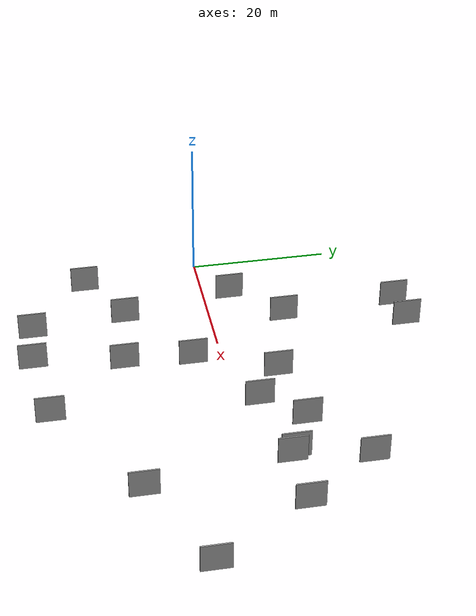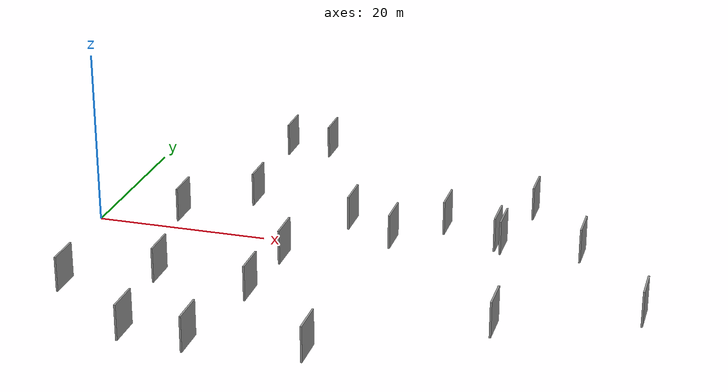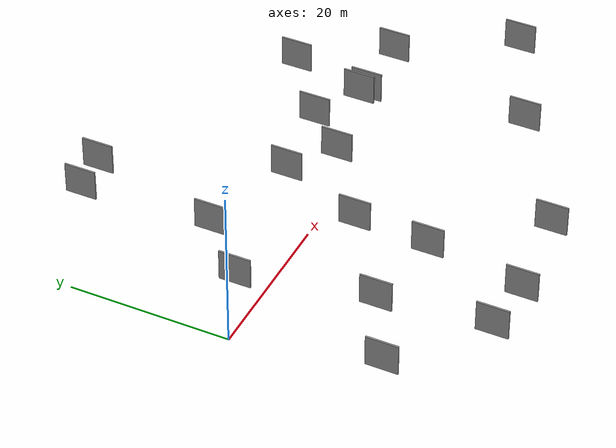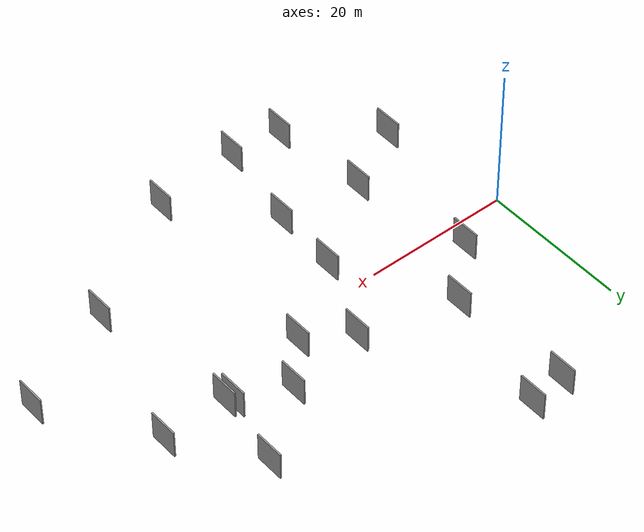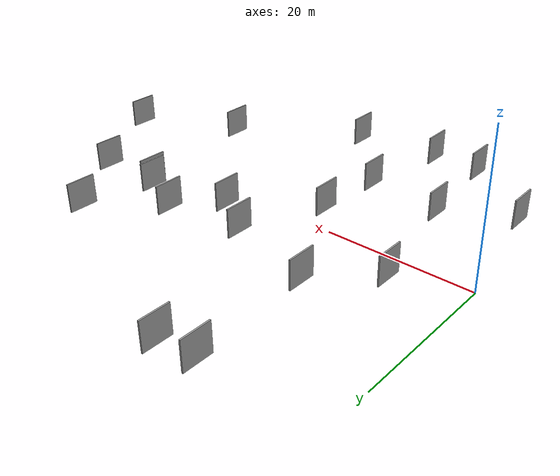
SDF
<sdf version="1.6">
 <world name="default">
  <scene>
   <sky><clouds><speed>12</speed></clouds></sky>
   <ambient>0.4 0.4 0.4 1</ambient>
   <background>0.7 0.7 0.7 1</background>
   <shadows>1</shadows>
  </scene>
  <gravity>0 0 -9.8066</gravity>
  <magnetic_field>6e-06 2.3e-05 -4.2e-05</magnetic_field>
  <physics default="0" name="default_physics" type="ode">
   <ode>
    <solver>
     <type>quick</type>
     <iters>10</iters>
     <sor>1.0</sor>
     <use_dynamic_moi_rescaling>0</use_dynamic_moi_rescaling>
    </solver>
    <constraints>
     <cfm>0</cfm>
     <erp>0.2</erp>
     <contact_max_correcting_vel>100</contact_max_correcting_vel>
     <contact_surface_layer>0.001</contact_surface_layer>
    </constraints>
   </ode>
   <max_step_size>0.004</max_step_size>
   <real_time_factor>1</real_time_factor>
   <real_time_update_rate>250</real_time_update_rate>
  </physics>
  <light name="sun" type="directional">
   <pose>0 0 10 0 0 0</pose>
   <diffuse>0.8 0.8 0.8 1</diffuse>
   <specular>0.2 0.2 0.2 1</specular>
   <attenuation>
    <range>1000</range>
    <constant>0.9</constant>
    <linear>0.01</linear>
    <quadratic>0.001</quadratic>
   </attenuation>
   <direction>-0.5 0.1 -0.9</direction>
  </light>
  <model name="grey_wall_1">
   <static>1</static>
   <pose>48.4677 15.3908 0.0 0.000000 0.000000 1.570796</pose>
   <link name="link">
    <pose>0 0 2.00 0 0 0</pose>
    <collision name="collision"><geometry><box><size>4.00 0.2 4.00</size></box></geometry></collision>
    <visual name="visual">
     <cast_shadows>0</cast_shadows>
     <geometry><box><size>4.00 0.2 4.00</size></box></geometry>
     <material>
      <script>
       <uri>model://grey_wall/materials/scripts</uri>
       <uri>model://grey_wall/materials/textures</uri>
       <name>vrc/grey_wall</name>
      </script>
     </material>
    </visual>
   </link>
  </model>
  <model name="grey_wall_2">
   <static>1</static>
   <pose>64.0958 -8.1620 0.0 0.000000 0.000000 1.570796</pose>
   <link name="link">
    <pose>0 0 2.00 0 0 0</pose>
    <collision name="collision"><geometry><box><size>4.00 0.2 4.00</size></box></geometry></collision>
    <visual name="visual">
     <cast_shadows>0</cast_shadows>
     <geometry><box><size>4.00 0.2 4.00</size></box></geometry>
     <material>
      <script>
       <uri>model://grey_wall/materials/scripts</uri>
       <uri>model://grey_wall/materials/textures</uri>
       <name>vrc/grey_wall</name>
      </script>
     </material>
    </visual>
   </link>
  </model>
  <model name="grey_wall_3">
   <static>1</static>
   <pose>39.4368 8.5772 0.0 0.000000 0.000000 1.570796</pose>
   <link name="link">
    <pose>0 0 2.00 0 0 0</pose>
    <collision name="collision"><geometry><box><size>4.00 0.2 4.00</size></box></geometry></collision>
    <visual name="visual">
     <cast_shadows>0</cast_shadows>
     <geometry><box><size>4.00 0.2 4.00</size></box></geometry>
     <material>
      <script>
       <uri>model://grey_wall/materials/scripts</uri>
       <uri>model://grey_wall/materials/textures</uri>
       <name>vrc/grey_wall</name>
      </script>
     </material>
    </visual>
   </link>
  </model>
  <model name="grey_wall_4">
   <static>1</static>
   <pose>14.8949 27.1481 0.0 0.000000 0.000000 1.570796</pose>
   <link name="link">
    <pose>0 0 2.00 0 0 0</pose>
    <collision name="collision"><geometry><box><size>4.00 0.2 4.00</size></box></geometry></collision>
    <visual name="visual">
     <cast_shadows>0</cast_shadows>
     <geometry><box><size>4.00 0.2 4.00</size></box></geometry>
     <material>
      <script>
       <uri>model://grey_wall/materials/scripts</uri>
       <uri>model://grey_wall/materials/textures</uri>
       <name>vrc/grey_wall</name>
      </script>
     </material>
    </visual>
   </link>
  </model>
  <model name="grey_wall_5">
   <static>1</static>
   <pose>3.1831 -17.0369 0.0 0.000000 0.000000 1.570796</pose>
   <link name="link">
    <pose>0 0 2.00 0 0 0</pose>
    <collision name="collision"><geometry><box><size>4.00 0.2 4.00</size></box></geometry></collision>
    <visual name="visual">
     <cast_shadows>0</cast_shadows>
     <geometry><box><size>4.00 0.2 4.00</size></box></geometry>
     <material>
      <script>
       <uri>model://grey_wall/materials/scripts</uri>
       <uri>model://grey_wall/materials/textures</uri>
       <name>vrc/grey_wall</name>
      </script>
     </material>
    </visual>
   </link>
  </model>
  <model name="grey_wall_6">
   <static>1</static>
   <pose>34.3728 3.1856 0.0 0.000000 0.000000 1.570796</pose>
   <link name="link">
    <pose>0 0 2.00 0 0 0</pose>
    <collision name="collision"><geometry><box><size>4.00 0.2 4.00</size></box></geometry></collision>
    <visual name="visual">
     <cast_shadows>0</cast_shadows>
     <geometry><box><size>4.00 0.2 4.00</size></box></geometry>
     <material>
      <script>
       <uri>model://grey_wall/materials/scripts</uri>
       <uri>model://grey_wall/materials/textures</uri>
       <name>vrc/grey_wall</name>
      </script>
     </material>
    </visual>
   </link>
  </model>
  <model name="grey_wall_7">
   <static>1</static>
   <pose>20.0250 27.7180 0.0 0.000000 0.000000 1.570796</pose>
   <link name="link">
    <pose>0 0 2.00 0 0 0</pose>
    <collision name="collision"><geometry><box><size>4.00 0.2 4.00</size></box></geometry></collision>
    <visual name="visual">
     <cast_shadows>0</cast_shadows>
     <geometry><box><size>4.00 0.2 4.00</size></box></geometry>
     <material>
      <script>
       <uri>model://grey_wall/materials/scripts</uri>
       <uri>model://grey_wall/materials/textures</uri>
       <name>vrc/grey_wall</name>
      </script>
     </material>
    </visual>
   </link>
  </model>
  <model name="grey_wall_8">
   <static>1</static>
   <pose>32.9250 -24.9039 0.0 0.000000 0.000000 1.570796</pose>
   <link name="link">
    <pose>0 0 2.00 0 0 0</pose>
    <collision name="collision"><geometry><box><size>4.00 0.2 4.00</size></box></geometry></collision>
    <visual name="visual">
     <cast_shadows>0</cast_shadows>
     <geometry><box><size>4.00 0.2 4.00</size></box></geometry>
     <material>
      <script>
       <uri>model://grey_wall/materials/scripts</uri>
       <uri>model://grey_wall/materials/textures</uri>
       <name>vrc/grey_wall</name>
      </script>
     </material>
    </visual>
   </link>
  </model>
  <model name="grey_wall_9">
   <static>1</static>
   <pose>49.6606 -14.6909 0.0 0.000000 0.000000 1.570796</pose>
   <link name="link">
    <pose>0 0 2.00 0 0 0</pose>
    <collision name="collision"><geometry><box><size>4.00 0.2 4.00</size></box></geometry></collision>
    <visual name="visual">
     <cast_shadows>0</cast_shadows>
     <geometry><box><size>4.00 0.2 4.00</size></box></geometry>
     <material>
      <script>
       <uri>model://grey_wall/materials/scripts</uri>
       <uri>model://grey_wall/materials/textures</uri>
       <name>vrc/grey_wall</name>
      </script>
     </material>
    </visual>
   </link>
  </model>
  <model name="grey_wall_10">
   <static>1</static>
   <pose>23.0791 -13.6613 0.0 0.000000 0.000000 1.570796</pose>
   <link name="link">
    <pose>0 0 2.00 0 0 0</pose>
    <collision name="collision"><geometry><box><size>4.00 0.2 4.00</size></box></geometry></collision>
    <visual name="visual">
     <cast_shadows>0</cast_shadows>
     <geometry><box><size>4.00 0.2 4.00</size></box></geometry>
     <material>
      <script>
       <uri>model://grey_wall/materials/scripts</uri>
       <uri>model://grey_wall/materials/textures</uri>
       <name>vrc/grey_wall</name>
      </script>
     </material>
    </visual>
   </link>
  </model>
  <model name="grey_wall_11">
   <static>1</static>
   <pose>8.8388 3.7757 0.0 0.000000 0.000000 1.570796</pose>
   <link name="link">
    <pose>0 0 2.00 0 0 0</pose>
    <collision name="collision"><geometry><box><size>4.00 0.2 4.00</size></box></geometry></collision>
    <visual name="visual">
     <cast_shadows>0</cast_shadows>
     <geometry><box><size>4.00 0.2 4.00</size></box></geometry>
     <material>
      <script>
       <uri>model://grey_wall/materials/scripts</uri>
       <uri>model://grey_wall/materials/textures</uri>
       <name>vrc/grey_wall</name>
      </script>
     </material>
    </visual>
   </link>
  </model>
  <model name="grey_wall_12">
   <static>1</static>
   <pose>20.8312 -26.2066 0.0 0.000000 0.000000 1.570796</pose>
   <link name="link">
    <pose>0 0 2.00 0 0 0</pose>
    <collision name="collision"><geometry><box><size>4.00 0.2 4.00</size></box></geometry></collision>
    <visual name="visual">
     <cast_shadows>0</cast_shadows>
     <geometry><box><size>4.00 0.2 4.00</size></box></geometry>
     <material>
      <script>
       <uri>model://grey_wall/materials/scripts</uri>
       <uri>model://grey_wall/materials/textures</uri>
       <name>vrc/grey_wall</name>
      </script>
     </material>
    </visual>
   </link>
  </model>
  <model name="grey_wall_13">
   <static>1</static>
   <pose>45.8858 5.6505 0.0 0.000000 0.000000 1.570796</pose>
   <link name="link">
    <pose>0 0 2.00 0 0 0</pose>
    <collision name="collision"><geometry><box><size>4.00 0.2 4.00</size></box></geometry></collision>
    <visual name="visual">
     <cast_shadows>0</cast_shadows>
     <geometry><box><size>4.00 0.2 4.00</size></box></geometry>
     <material>
      <script>
       <uri>model://grey_wall/materials/scripts</uri>
       <uri>model://grey_wall/materials/textures</uri>
       <name>vrc/grey_wall</name>
      </script>
     </material>
    </visual>
   </link>
  </model>
  <model name="grey_wall_14">
   <static>1</static>
   <pose>15.8014 10.5231 0.0 0.000000 0.000000 1.570796</pose>
   <link name="link">
    <pose>0 0 2.00 0 0 0</pose>
    <collision name="collision"><geometry><box><size>4.00 0.2 4.00</size></box></geometry></collision>
    <visual name="visual">
     <cast_shadows>0</cast_shadows>
     <geometry><box><size>4.00 0.2 4.00</size></box></geometry>
     <material>
      <script>
       <uri>model://grey_wall/materials/scripts</uri>
       <uri>model://grey_wall/materials/textures</uri>
       <name>vrc/grey_wall</name>
      </script>
     </material>
    </visual>
   </link>
  </model>
  <model name="grey_wall_15">
   <static>1</static>
   <pose>23.8024 -4.1161 0.0 0.000000 0.000000 1.570796</pose>
   <link name="link">
    <pose>0 0 2.00 0 0 0</pose>
    <collision name="collision"><geometry><box><size>4.00 0.2 4.00</size></box></geometry></collision>
    <visual name="visual">
     <cast_shadows>0</cast_shadows>
     <geometry><box><size>4.00 0.2 4.00</size></box></geometry>
     <material>
      <script>
       <uri>model://grey_wall/materials/scripts</uri>
       <uri>model://grey_wall/materials/textures</uri>
       <name>vrc/grey_wall</name>
      </script>
     </material>
    </visual>
   </link>
  </model>
  <model name="grey_wall_16">
   <static>1</static>
   <pose>28.5617 6.9822 0.0 0.000000 0.000000 1.570796</pose>
   <link name="link">
    <pose>0 0 2.00 0 0 0</pose>
    <collision name="collision"><geometry><box><size>4.00 0.2 4.00</size></box></geometry></collision>
    <visual name="visual">
     <cast_shadows>0</cast_shadows>
     <geometry><box><size>4.00 0.2 4.00</size></box></geometry>
     <material>
      <script>
       <uri>model://grey_wall/materials/scripts</uri>
       <uri>model://grey_wall/materials/textures</uri>
       <name>vrc/grey_wall</name>
      </script>
     </material>
    </visual>
   </link>
  </model>
  <model name="grey_wall_17">
   <static>1</static>
   <pose>55.5647 5.2991 0.0 0.000000 0.000000 1.570796</pose>
   <link name="link">
    <pose>0 0 2.00 0 0 0</pose>
    <collision name="collision"><geometry><box><size>4.00 0.2 4.00</size></box></geometry></collision>
    <visual name="visual">
     <cast_shadows>0</cast_shadows>
     <geometry><box><size>4.00 0.2 4.00</size></box></geometry>
     <material>
      <script>
       <uri>model://grey_wall/materials/scripts</uri>
       <uri>model://grey_wall/materials/textures</uri>
       <name>vrc/grey_wall</name>
      </script>
     </material>
    </visual>
   </link>
  </model>
  <model name="grey_wall_18">
   <static>1</static>
   <pose>46.6556 5.0081 0.0 0.000000 0.000000 1.570796</pose>
   <link name="link">
    <pose>0 0 2.00 0 0 0</pose>
    <collision name="collision"><geometry><box><size>4.00 0.2 4.00</size></box></geometry></collision>
    <visual name="visual">
     <cast_shadows>0</cast_shadows>
     <geometry><box><size>4.00 0.2 4.00</size></box></geometry>
     <material>
      <script>
       <uri>model://grey_wall/materials/scripts</uri>
       <uri>model://grey_wall/materials/textures</uri>
       <name>vrc/grey_wall</name>
      </script>
     </material>
    </visual>
   </link>
  </model>
  <model name="grey_wall_19">
   <static>1</static>
   <pose>13.6632 -25.6406 0.0 0.000000 0.000000 1.570796</pose>
   <link name="link">
    <pose>0 0 2.00 0 0 0</pose>
    <collision name="collision"><geometry><box><size>4.00 0.2 4.00</size></box></geometry></collision>
    <visual name="visual">
     <cast_shadows>0</cast_shadows>
     <geometry><box><size>4.00 0.2 4.00</size></box></geometry>
     <material>
      <script>
       <uri>model://grey_wall/materials/scripts</uri>
       <uri>model://grey_wall/materials/textures</uri>
       <name>vrc/grey_wall</name>
      </script>
     </material>
    </visual>
   </link>
  </model>
  <model name="grey_wall_20">
   <static>1</static>
   <pose>12.1807 -12.1707 0.0 0.000000 0.000000 1.570796</pose>
   <link name="link">
    <pose>0 0 2.00 0 0 0</pose>
    <collision name="collision"><geometry><box><size>4.00 0.2 4.00</size></box></geometry></collision>
    <visual name="visual">
     <cast_shadows>0</cast_shadows>
     <geometry><box><size>4.00 0.2 4.00</size></box></geometry>
     <material>
      <script>
       <uri>model://grey_wall/materials/scripts</uri>
       <uri>model://grey_wall/materials/textures</uri>
       <name>vrc/grey_wall</name>
      </script>
     </material>
    </visual>
   </link>
  </model>
 </world>
</sdf>
